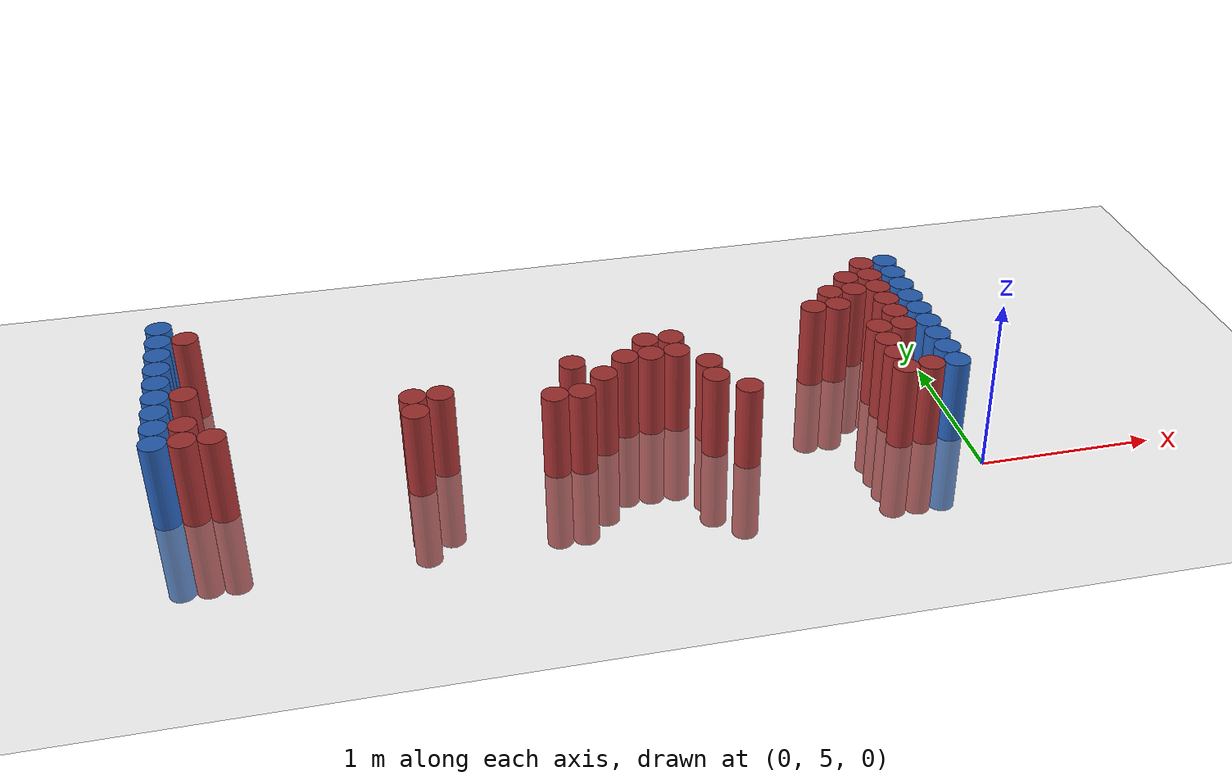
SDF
<sdf version="1.6">
 <world name="default">
  <model name="ground_plane">
   <static>1</static>
   <link name="link">
    <collision name="collision">
     <geometry><plane><normal>0 0 1</normal><size>100 100</size></plane></geometry>
     <surface><friction><ode><mu>100</mu><mu2>50</mu2></ode></friction></surface>
    </collision>
    <visual name="visual">
     <cast_shadows>0</cast_shadows>
     <geometry><plane><normal>0 0 1</normal><size>100 100</size></plane></geometry>
     <material>
      <script><uri>file://media/materials/scripts/gazebo.material</uri><name>Gazebo/Grey</name></script>
     </material>
    </visual>
   </link>
  </model>
  <model name="unit_cylinder_98">
   <static>1</static>
   <pose>-4.425000 5.475000 0.000000 0.000000 0.000000 0.000000</pose>
   <link name="link">
    <inertial>
     <mass>1</mass>
     <inertia><ixx>0.145833</ixx><ixy>0</ixy><ixz>0</ixz><iyy>0.145833</iyy><iyz>0</iyz><izz>0.125</izz></inertia>
    </inertial>
    <collision name="collision">
     <geometry><cylinder><radius>0.075000</radius><length>1</length></cylinder></geometry>
    </collision>
    <visual name="visual">
     <geometry><cylinder><radius>0.075000</radius><length>1</length></cylinder></geometry>
     <material>
      <ambient>0.152000 0.379000 0.720000 1</ambient>
      <diffuse>0.152000 0.379000 0.720000 1</diffuse>
     </material>
     <material>
      <script><name>Gazebo/Grey</name><uri>file://media/materials/scripts/gazebo.material</uri></script>
     </material>
    </visual>
   </link>
  </model>
  <model name="unit_cylinder_99">
   <static>1</static>
   <pose>-4.425000 5.625000 0.000000 0.000000 0.000000 0.000000</pose>
   <link name="link">
    <inertial>
     <mass>1</mass>
     <inertia><ixx>0.145833</ixx><ixy>0</ixy><ixz>0</ixz><iyy>0.145833</iyy><iyz>0</iyz><izz>0.125</izz></inertia>
    </inertial>
    <collision name="collision">
     <geometry><cylinder><radius>0.075000</radius><length>1</length></cylinder></geometry>
    </collision>
    <visual name="visual">
     <geometry><cylinder><radius>0.075000</radius><length>1</length></cylinder></geometry>
     <material>
      <ambient>0.152000 0.379000 0.720000 1</ambient>
      <diffuse>0.152000 0.379000 0.720000 1</diffuse>
     </material>
     <material>
      <script><name>Gazebo/Grey</name><uri>file://media/materials/scripts/gazebo.material</uri></script>
     </material>
    </visual>
   </link>
  </model>
  <model name="unit_cylinder_100">
   <static>1</static>
   <pose>-4.425000 5.775000 0.000000 0.000000 0.000000 0.000000</pose>
   <link name="link">
    <inertial>
     <mass>1</mass>
     <inertia><ixx>0.145833</ixx><ixy>0</ixy><ixz>0</ixz><iyy>0.145833</iyy><iyz>0</iyz><izz>0.125</izz></inertia>
    </inertial>
    <collision name="collision">
     <geometry><cylinder><radius>0.075000</radius><length>1</length></cylinder></geometry>
    </collision>
    <visual name="visual">
     <geometry><cylinder><radius>0.075000</radius><length>1</length></cylinder></geometry>
     <material>
      <ambient>0.152000 0.379000 0.720000 1</ambient>
      <diffuse>0.152000 0.379000 0.720000 1</diffuse>
     </material>
     <material>
      <script><name>Gazebo/Grey</name><uri>file://media/materials/scripts/gazebo.material</uri></script>
     </material>
    </visual>
   </link>
  </model>
  <model name="unit_cylinder_101">
   <static>1</static>
   <pose>-4.425000 5.925000 0.000000 0.000000 0.000000 0.000000</pose>
   <link name="link">
    <inertial>
     <mass>1</mass>
     <inertia><ixx>0.145833</ixx><ixy>0</ixy><ixz>0</ixz><iyy>0.145833</iyy><iyz>0</iyz><izz>0.125</izz></inertia>
    </inertial>
    <collision name="collision">
     <geometry><cylinder><radius>0.075000</radius><length>1</length></cylinder></geometry>
    </collision>
    <visual name="visual">
     <geometry><cylinder><radius>0.075000</radius><length>1</length></cylinder></geometry>
     <material>
      <ambient>0.152000 0.379000 0.720000 1</ambient>
      <diffuse>0.152000 0.379000 0.720000 1</diffuse>
     </material>
     <material>
      <script><name>Gazebo/Grey</name><uri>file://media/materials/scripts/gazebo.material</uri></script>
     </material>
    </visual>
   </link>
  </model>
  <model name="unit_cylinder_102">
   <static>1</static>
   <pose>-4.425000 6.075000 0.000000 0.000000 0.000000 0.000000</pose>
   <link name="link">
    <inertial>
     <mass>1</mass>
     <inertia><ixx>0.145833</ixx><ixy>0</ixy><ixz>0</ixz><iyy>0.145833</iyy><iyz>0</iyz><izz>0.125</izz></inertia>
    </inertial>
    <collision name="collision">
     <geometry><cylinder><radius>0.075000</radius><length>1</length></cylinder></geometry>
    </collision>
    <visual name="visual">
     <geometry><cylinder><radius>0.075000</radius><length>1</length></cylinder></geometry>
     <material>
      <ambient>0.152000 0.379000 0.720000 1</ambient>
      <diffuse>0.152000 0.379000 0.720000 1</diffuse>
     </material>
     <material>
      <script><name>Gazebo/Grey</name><uri>file://media/materials/scripts/gazebo.material</uri></script>
     </material>
    </visual>
   </link>
  </model>
  <model name="unit_cylinder_103">
   <static>1</static>
   <pose>-4.425000 6.225000 0.000000 0.000000 0.000000 0.000000</pose>
   <link name="link">
    <inertial>
     <mass>1</mass>
     <inertia><ixx>0.145833</ixx><ixy>0</ixy><ixz>0</ixz><iyy>0.145833</iyy><iyz>0</iyz><izz>0.125</izz></inertia>
    </inertial>
    <collision name="collision">
     <geometry><cylinder><radius>0.075000</radius><length>1</length></cylinder></geometry>
    </collision>
    <visual name="visual">
     <geometry><cylinder><radius>0.075000</radius><length>1</length></cylinder></geometry>
     <material>
      <ambient>0.152000 0.379000 0.720000 1</ambient>
      <diffuse>0.152000 0.379000 0.720000 1</diffuse>
     </material>
     <material>
      <script><name>Gazebo/Grey</name><uri>file://media/materials/scripts/gazebo.material</uri></script>
     </material>
    </visual>
   </link>
  </model>
  <model name="unit_cylinder_104">
   <static>1</static>
   <pose>-4.425000 6.375000 0.000000 0.000000 0.000000 0.000000</pose>
   <link name="link">
    <inertial>
     <mass>1</mass>
     <inertia><ixx>0.145833</ixx><ixy>0</ixy><ixz>0</ixz><iyy>0.145833</iyy><iyz>0</iyz><izz>0.125</izz></inertia>
    </inertial>
    <collision name="collision">
     <geometry><cylinder><radius>0.075000</radius><length>1</length></cylinder></geometry>
    </collision>
    <visual name="visual">
     <geometry><cylinder><radius>0.075000</radius><length>1</length></cylinder></geometry>
     <material>
      <ambient>0.152000 0.379000 0.720000 1</ambient>
      <diffuse>0.152000 0.379000 0.720000 1</diffuse>
     </material>
     <material>
      <script><name>Gazebo/Grey</name><uri>file://media/materials/scripts/gazebo.material</uri></script>
     </material>
    </visual>
   </link>
  </model>
  <model name="unit_cylinder_105">
   <static>1</static>
   <pose>-4.425000 6.525000 0.000000 0.000000 0.000000 0.000000</pose>
   <link name="link">
    <inertial>
     <mass>1</mass>
     <inertia><ixx>0.145833</ixx><ixy>0</ixy><ixz>0</ixz><iyy>0.145833</iyy><iyz>0</iyz><izz>0.125</izz></inertia>
    </inertial>
    <collision name="collision">
     <geometry><cylinder><radius>0.075000</radius><length>1</length></cylinder></geometry>
    </collision>
    <visual name="visual">
     <geometry><cylinder><radius>0.075000</radius><length>1</length></cylinder></geometry>
     <material>
      <ambient>0.152000 0.379000 0.720000 1</ambient>
      <diffuse>0.152000 0.379000 0.720000 1</diffuse>
     </material>
     <material>
      <script><name>Gazebo/Grey</name><uri>file://media/materials/scripts/gazebo.material</uri></script>
     </material>
    </visual>
   </link>
  </model>
  <model name="unit_cylinder_106">
   <static>1</static>
   <pose>-4.425000 6.675000 0.000000 0.000000 0.000000 0.000000</pose>
   <link name="link">
    <inertial>
     <mass>1</mass>
     <inertia><ixx>0.145833</ixx><ixy>0</ixy><ixz>0</ixz><iyy>0.145833</iyy><iyz>0</iyz><izz>0.125</izz></inertia>
    </inertial>
    <collision name="collision">
     <geometry><cylinder><radius>0.075000</radius><length>1</length></cylinder></geometry>
    </collision>
    <visual name="visual">
     <geometry><cylinder><radius>0.075000</radius><length>1</length></cylinder></geometry>
     <material>
      <ambient>0.152000 0.379000 0.720000 1</ambient>
      <diffuse>0.152000 0.379000 0.720000 1</diffuse>
     </material>
     <material>
      <script><name>Gazebo/Grey</name><uri>file://media/materials/scripts/gazebo.material</uri></script>
     </material>
    </visual>
   </link>
  </model>
  <model name="unit_cylinder_128">
   <static>1</static>
   <pose>-4.275000 5.475000 0.000000 0.000000 0.000000 0.000000</pose>
   <link name="link">
    <inertial>
     <mass>1</mass>
     <inertia><ixx>0.145833</ixx><ixy>0</ixy><ixz>0</ixz><iyy>0.145833</iyy><iyz>0</iyz><izz>0.125</izz></inertia>
    </inertial>
    <collision name="collision">
     <geometry><cylinder><radius>0.075000</radius><length>1</length></cylinder></geometry>
    </collision>
    <visual name="visual">
     <geometry><cylinder><radius>0.075000</radius><length>1</length></cylinder></geometry>
     <material>
      <ambient>0.648000 0.192000 0.192000 1</ambient>
      <diffuse>0.648000 0.192000 0.192000 1</diffuse>
     </material>
     <material>
      <script><name>Gazebo/Grey</name><uri>file://media/materials/scripts/gazebo.material</uri></script>
     </material>
    </visual>
   </link>
  </model>
  <model name="unit_cylinder_129">
   <static>1</static>
   <pose>-4.275000 5.625000 0.000000 0.000000 0.000000 0.000000</pose>
   <link name="link">
    <inertial>
     <mass>1</mass>
     <inertia><ixx>0.145833</ixx><ixy>0</ixy><ixz>0</ixz><iyy>0.145833</iyy><iyz>0</iyz><izz>0.125</izz></inertia>
    </inertial>
    <collision name="collision">
     <geometry><cylinder><radius>0.075000</radius><length>1</length></cylinder></geometry>
    </collision>
    <visual name="visual">
     <geometry><cylinder><radius>0.075000</radius><length>1</length></cylinder></geometry>
     <material>
      <ambient>0.648000 0.192000 0.192000 1</ambient>
      <diffuse>0.648000 0.192000 0.192000 1</diffuse>
     </material>
     <material>
      <script><name>Gazebo/Grey</name><uri>file://media/materials/scripts/gazebo.material</uri></script>
     </material>
    </visual>
   </link>
  </model>
  <model name="unit_cylinder_130">
   <static>1</static>
   <pose>-4.275000 5.925000 0.000000 0.000000 0.000000 0.000000</pose>
   <link name="link">
    <inertial>
     <mass>1</mass>
     <inertia><ixx>0.145833</ixx><ixy>0</ixy><ixz>0</ixz><iyy>0.145833</iyy><iyz>0</iyz><izz>0.125</izz></inertia>
    </inertial>
    <collision name="collision">
     <geometry><cylinder><radius>0.075000</radius><length>1</length></cylinder></geometry>
    </collision>
    <visual name="visual">
     <geometry><cylinder><radius>0.075000</radius><length>1</length></cylinder></geometry>
     <material>
      <ambient>0.648000 0.192000 0.192000 1</ambient>
      <diffuse>0.648000 0.192000 0.192000 1</diffuse>
     </material>
     <material>
      <script><name>Gazebo/Grey</name><uri>file://media/materials/scripts/gazebo.material</uri></script>
     </material>
    </visual>
   </link>
  </model>
  <model name="unit_cylinder_131">
   <static>1</static>
   <pose>-4.275000 6.525000 0.000000 0.000000 0.000000 0.000000</pose>
   <link name="link">
    <inertial>
     <mass>1</mass>
     <inertia><ixx>0.145833</ixx><ixy>0</ixy><ixz>0</ixz><iyy>0.145833</iyy><iyz>0</iyz><izz>0.125</izz></inertia>
    </inertial>
    <collision name="collision">
     <geometry><cylinder><radius>0.075000</radius><length>1</length></cylinder></geometry>
    </collision>
    <visual name="visual">
     <geometry><cylinder><radius>0.075000</radius><length>1</length></cylinder></geometry>
     <material>
      <ambient>0.648000 0.192000 0.192000 1</ambient>
      <diffuse>0.648000 0.192000 0.192000 1</diffuse>
     </material>
     <material>
      <script><name>Gazebo/Grey</name><uri>file://media/materials/scripts/gazebo.material</uri></script>
     </material>
    </visual>
   </link>
  </model>
  <model name="unit_cylinder_143">
   <static>1</static>
   <pose>-4.125000 5.475000 0.000000 0.000000 0.000000 0.000000</pose>
   <link name="link">
    <inertial>
     <mass>1</mass>
     <inertia><ixx>0.145833</ixx><ixy>0</ixy><ixz>0</ixz><iyy>0.145833</iyy><iyz>0</iyz><izz>0.125</izz></inertia>
    </inertial>
    <collision name="collision">
     <geometry><cylinder><radius>0.075000</radius><length>1</length></cylinder></geometry>
    </collision>
    <visual name="visual">
     <geometry><cylinder><radius>0.075000</radius><length>1</length></cylinder></geometry>
     <material>
      <ambient>0.648000 0.192000 0.192000 1</ambient>
      <diffuse>0.648000 0.192000 0.192000 1</diffuse>
     </material>
     <material>
      <script><name>Gazebo/Grey</name><uri>file://media/materials/scripts/gazebo.material</uri></script>
     </material>
    </visual>
   </link>
  </model>
  <model name="unit_cylinder_185">
   <static>1</static>
   <pose>-3.075000 5.475000 0.000000 0.000000 0.000000 0.000000</pose>
   <link name="link">
    <inertial>
     <mass>1</mass>
     <inertia><ixx>0.145833</ixx><ixy>0</ixy><ixz>0</ixz><iyy>0.145833</iyy><iyz>0</iyz><izz>0.125</izz></inertia>
    </inertial>
    <collision name="collision">
     <geometry><cylinder><radius>0.075000</radius><length>1</length></cylinder></geometry>
    </collision>
    <visual name="visual">
     <geometry><cylinder><radius>0.075000</radius><length>1</length></cylinder></geometry>
     <material>
      <ambient>0.648000 0.192000 0.192000 1</ambient>
      <diffuse>0.648000 0.192000 0.192000 1</diffuse>
     </material>
     <material>
      <script><name>Gazebo/Grey</name><uri>file://media/materials/scripts/gazebo.material</uri></script>
     </material>
    </visual>
   </link>
  </model>
  <model name="unit_cylinder_186">
   <static>1</static>
   <pose>-3.075000 5.625000 0.000000 0.000000 0.000000 0.000000</pose>
   <link name="link">
    <inertial>
     <mass>1</mass>
     <inertia><ixx>0.145833</ixx><ixy>0</ixy><ixz>0</ixz><iyy>0.145833</iyy><iyz>0</iyz><izz>0.125</izz></inertia>
    </inertial>
    <collision name="collision">
     <geometry><cylinder><radius>0.075000</radius><length>1</length></cylinder></geometry>
    </collision>
    <visual name="visual">
     <geometry><cylinder><radius>0.075000</radius><length>1</length></cylinder></geometry>
     <material>
      <ambient>0.648000 0.192000 0.192000 1</ambient>
      <diffuse>0.648000 0.192000 0.192000 1</diffuse>
     </material>
     <material>
      <script><name>Gazebo/Grey</name><uri>file://media/materials/scripts/gazebo.material</uri></script>
     </material>
    </visual>
   </link>
  </model>
  <model name="unit_cylinder_187">
   <static>1</static>
   <pose>-2.925000 5.625000 0.000000 0.000000 0.000000 0.000000</pose>
   <link name="link">
    <inertial>
     <mass>1</mass>
     <inertia><ixx>0.145833</ixx><ixy>0</ixy><ixz>0</ixz><iyy>0.145833</iyy><iyz>0</iyz><izz>0.125</izz></inertia>
    </inertial>
    <collision name="collision">
     <geometry><cylinder><radius>0.075000</radius><length>1</length></cylinder></geometry>
    </collision>
    <visual name="visual">
     <geometry><cylinder><radius>0.075000</radius><length>1</length></cylinder></geometry>
     <material>
      <ambient>0.648000 0.192000 0.192000 1</ambient>
      <diffuse>0.648000 0.192000 0.192000 1</diffuse>
     </material>
     <material>
      <script><name>Gazebo/Grey</name><uri>file://media/materials/scripts/gazebo.material</uri></script>
     </material>
    </visual>
   </link>
  </model>
  <model name="unit_cylinder_191">
   <static>1</static>
   <pose>-2.325000 5.475000 0.000000 0.000000 0.000000 0.000000</pose>
   <link name="link">
    <inertial>
     <mass>1</mass>
     <inertia><ixx>0.145833</ixx><ixy>0</ixy><ixz>0</ixz><iyy>0.145833</iyy><iyz>0</iyz><izz>0.125</izz></inertia>
    </inertial>
    <collision name="collision">
     <geometry><cylinder><radius>0.075000</radius><length>1</length></cylinder></geometry>
    </collision>
    <visual name="visual">
     <geometry><cylinder><radius>0.075000</radius><length>1</length></cylinder></geometry>
     <material>
      <ambient>0.648000 0.192000 0.192000 1</ambient>
      <diffuse>0.648000 0.192000 0.192000 1</diffuse>
     </material>
     <material>
      <script><name>Gazebo/Grey</name><uri>file://media/materials/scripts/gazebo.material</uri></script>
     </material>
    </visual>
   </link>
  </model>
  <model name="unit_cylinder_196">
   <static>1</static>
   <pose>-2.175000 5.475000 0.000000 0.000000 0.000000 0.000000</pose>
   <link name="link">
    <inertial>
     <mass>1</mass>
     <inertia><ixx>0.145833</ixx><ixy>0</ixy><ixz>0</ixz><iyy>0.145833</iyy><iyz>0</iyz><izz>0.125</izz></inertia>
    </inertial>
    <collision name="collision">
     <geometry><cylinder><radius>0.075000</radius><length>1</length></cylinder></geometry>
    </collision>
    <visual name="visual">
     <geometry><cylinder><radius>0.075000</radius><length>1</length></cylinder></geometry>
     <material>
      <ambient>0.648000 0.192000 0.192000 1</ambient>
      <diffuse>0.648000 0.192000 0.192000 1</diffuse>
     </material>
     <material>
      <script><name>Gazebo/Grey</name><uri>file://media/materials/scripts/gazebo.material</uri></script>
     </material>
    </visual>
   </link>
  </model>
  <model name="unit_cylinder_197">
   <static>1</static>
   <pose>-2.175000 5.775000 0.000000 0.000000 0.000000 0.000000</pose>
   <link name="link">
    <inertial>
     <mass>1</mass>
     <inertia><ixx>0.145833</ixx><ixy>0</ixy><ixz>0</ixz><iyy>0.145833</iyy><iyz>0</iyz><izz>0.125</izz></inertia>
    </inertial>
    <collision name="collision">
     <geometry><cylinder><radius>0.075000</radius><length>1</length></cylinder></geometry>
    </collision>
    <visual name="visual">
     <geometry><cylinder><radius>0.075000</radius><length>1</length></cylinder></geometry>
     <material>
      <ambient>0.648000 0.192000 0.192000 1</ambient>
      <diffuse>0.648000 0.192000 0.192000 1</diffuse>
     </material>
     <material>
      <script><name>Gazebo/Grey</name><uri>file://media/materials/scripts/gazebo.material</uri></script>
     </material>
    </visual>
   </link>
  </model>
  <model name="unit_cylinder_202">
   <static>1</static>
   <pose>-2.025000 5.625000 0.000000 0.000000 0.000000 0.000000</pose>
   <link name="link">
    <inertial>
     <mass>1</mass>
     <inertia><ixx>0.145833</ixx><ixy>0</ixy><ixz>0</ixz><iyy>0.145833</iyy><iyz>0</iyz><izz>0.125</izz></inertia>
    </inertial>
    <collision name="collision">
     <geometry><cylinder><radius>0.075000</radius><length>1</length></cylinder></geometry>
    </collision>
    <visual name="visual">
     <geometry><cylinder><radius>0.075000</radius><length>1</length></cylinder></geometry>
     <material>
      <ambient>0.648000 0.192000 0.192000 1</ambient>
      <diffuse>0.648000 0.192000 0.192000 1</diffuse>
     </material>
     <material>
      <script><name>Gazebo/Grey</name><uri>file://media/materials/scripts/gazebo.material</uri></script>
     </material>
    </visual>
   </link>
  </model>
  <model name="unit_cylinder_208">
   <static>1</static>
   <pose>-1.875000 5.775000 0.000000 0.000000 0.000000 0.000000</pose>
   <link name="link">
    <inertial>
     <mass>1</mass>
     <inertia><ixx>0.145833</ixx><ixy>0</ixy><ixz>0</ixz><iyy>0.145833</iyy><iyz>0</iyz><izz>0.125</izz></inertia>
    </inertial>
    <collision name="collision">
     <geometry><cylinder><radius>0.075000</radius><length>1</length></cylinder></geometry>
    </collision>
    <visual name="visual">
     <geometry><cylinder><radius>0.075000</radius><length>1</length></cylinder></geometry>
     <material>
      <ambient>0.648000 0.192000 0.192000 1</ambient>
      <diffuse>0.648000 0.192000 0.192000 1</diffuse>
     </material>
     <material>
      <script><name>Gazebo/Grey</name><uri>file://media/materials/scripts/gazebo.material</uri></script>
     </material>
    </visual>
   </link>
  </model>
  <model name="unit_cylinder_213">
   <static>1</static>
   <pose>-1.725000 5.775000 0.000000 0.000000 0.000000 0.000000</pose>
   <link name="link">
    <inertial>
     <mass>1</mass>
     <inertia><ixx>0.145833</ixx><ixy>0</ixy><ixz>0</ixz><iyy>0.145833</iyy><iyz>0</iyz><izz>0.125</izz></inertia>
    </inertial>
    <collision name="collision">
     <geometry><cylinder><radius>0.075000</radius><length>1</length></cylinder></geometry>
    </collision>
    <visual name="visual">
     <geometry><cylinder><radius>0.075000</radius><length>1</length></cylinder></geometry>
     <material>
      <ambient>0.648000 0.192000 0.192000 1</ambient>
      <diffuse>0.648000 0.192000 0.192000 1</diffuse>
     </material>
     <material>
      <script><name>Gazebo/Grey</name><uri>file://media/materials/scripts/gazebo.material</uri></script>
     </material>
    </visual>
   </link>
  </model>
  <model name="unit_cylinder_214">
   <static>1</static>
   <pose>-1.725000 5.925000 0.000000 0.000000 0.000000 0.000000</pose>
   <link name="link">
    <inertial>
     <mass>1</mass>
     <inertia><ixx>0.145833</ixx><ixy>0</ixy><ixz>0</ixz><iyy>0.145833</iyy><iyz>0</iyz><izz>0.125</izz></inertia>
    </inertial>
    <collision name="collision">
     <geometry><cylinder><radius>0.075000</radius><length>1</length></cylinder></geometry>
    </collision>
    <visual name="visual">
     <geometry><cylinder><radius>0.075000</radius><length>1</length></cylinder></geometry>
     <material>
      <ambient>0.648000 0.192000 0.192000 1</ambient>
      <diffuse>0.648000 0.192000 0.192000 1</diffuse>
     </material>
     <material>
      <script><name>Gazebo/Grey</name><uri>file://media/materials/scripts/gazebo.material</uri></script>
     </material>
    </visual>
   </link>
  </model>
  <model name="unit_cylinder_219">
   <static>1</static>
   <pose>-1.575000 5.775000 0.000000 0.000000 0.000000 0.000000</pose>
   <link name="link">
    <inertial>
     <mass>1</mass>
     <inertia><ixx>0.145833</ixx><ixy>0</ixy><ixz>0</ixz><iyy>0.145833</iyy><iyz>0</iyz><izz>0.125</izz></inertia>
    </inertial>
    <collision name="collision">
     <geometry><cylinder><radius>0.075000</radius><length>1</length></cylinder></geometry>
    </collision>
    <visual name="visual">
     <geometry><cylinder><radius>0.075000</radius><length>1</length></cylinder></geometry>
     <material>
      <ambient>0.648000 0.192000 0.192000 1</ambient>
      <diffuse>0.648000 0.192000 0.192000 1</diffuse>
     </material>
     <material>
      <script><name>Gazebo/Grey</name><uri>file://media/materials/scripts/gazebo.material</uri></script>
     </material>
    </visual>
   </link>
  </model>
  <model name="unit_cylinder_220">
   <static>1</static>
   <pose>-1.575000 5.925000 0.000000 0.000000 0.000000 0.000000</pose>
   <link name="link">
    <inertial>
     <mass>1</mass>
     <inertia><ixx>0.145833</ixx><ixy>0</ixy><ixz>0</ixz><iyy>0.145833</iyy><iyz>0</iyz><izz>0.125</izz></inertia>
    </inertial>
    <collision name="collision">
     <geometry><cylinder><radius>0.075000</radius><length>1</length></cylinder></geometry>
    </collision>
    <visual name="visual">
     <geometry><cylinder><radius>0.075000</radius><length>1</length></cylinder></geometry>
     <material>
      <ambient>0.648000 0.192000 0.192000 1</ambient>
      <diffuse>0.648000 0.192000 0.192000 1</diffuse>
     </material>
     <material>
      <script><name>Gazebo/Grey</name><uri>file://media/materials/scripts/gazebo.material</uri></script>
     </material>
    </visual>
   </link>
  </model>
  <model name="unit_cylinder_226">
   <static>1</static>
   <pose>-1.425000 5.475000 0.000000 0.000000 0.000000 0.000000</pose>
   <link name="link">
    <inertial>
     <mass>1</mass>
     <inertia><ixx>0.145833</ixx><ixy>0</ixy><ixz>0</ixz><iyy>0.145833</iyy><iyz>0</iyz><izz>0.125</izz></inertia>
    </inertial>
    <collision name="collision">
     <geometry><cylinder><radius>0.075000</radius><length>1</length></cylinder></geometry>
    </collision>
    <visual name="visual">
     <geometry><cylinder><radius>0.075000</radius><length>1</length></cylinder></geometry>
     <material>
      <ambient>0.648000 0.192000 0.192000 1</ambient>
      <diffuse>0.648000 0.192000 0.192000 1</diffuse>
     </material>
     <material>
      <script><name>Gazebo/Grey</name><uri>file://media/materials/scripts/gazebo.material</uri></script>
     </material>
    </visual>
   </link>
  </model>
  <model name="unit_cylinder_227">
   <static>1</static>
   <pose>-1.425000 5.625000 0.000000 0.000000 0.000000 0.000000</pose>
   <link name="link">
    <inertial>
     <mass>1</mass>
     <inertia><ixx>0.145833</ixx><ixy>0</ixy><ixz>0</ixz><iyy>0.145833</iyy><iyz>0</iyz><izz>0.125</izz></inertia>
    </inertial>
    <collision name="collision">
     <geometry><cylinder><radius>0.075000</radius><length>1</length></cylinder></geometry>
    </collision>
    <visual name="visual">
     <geometry><cylinder><radius>0.075000</radius><length>1</length></cylinder></geometry>
     <material>
      <ambient>0.648000 0.192000 0.192000 1</ambient>
      <diffuse>0.648000 0.192000 0.192000 1</diffuse>
     </material>
     <material>
      <script><name>Gazebo/Grey</name><uri>file://media/materials/scripts/gazebo.material</uri></script>
     </material>
    </visual>
   </link>
  </model>
  <model name="unit_cylinder_231">
   <static>1</static>
   <pose>-1.275000 5.325000 0.000000 0.000000 0.000000 0.000000</pose>
   <link name="link">
    <inertial>
     <mass>1</mass>
     <inertia><ixx>0.145833</ixx><ixy>0</ixy><ixz>0</ixz><iyy>0.145833</iyy><iyz>0</iyz><izz>0.125</izz></inertia>
    </inertial>
    <collision name="collision">
     <geometry><cylinder><radius>0.075000</radius><length>1</length></cylinder></geometry>
    </collision>
    <visual name="visual">
     <geometry><cylinder><radius>0.075000</radius><length>1</length></cylinder></geometry>
     <material>
      <ambient>0.648000 0.192000 0.192000 1</ambient>
      <diffuse>0.648000 0.192000 0.192000 1</diffuse>
     </material>
     <material>
      <script><name>Gazebo/Grey</name><uri>file://media/materials/scripts/gazebo.material</uri></script>
     </material>
    </visual>
   </link>
  </model>
  <model name="unit_cylinder_251">
   <static>1</static>
   <pose>-0.675000 6.075000 0.000000 0.000000 0.000000 0.000000</pose>
   <link name="link">
    <inertial>
     <mass>1</mass>
     <inertia><ixx>0.145833</ixx><ixy>0</ixy><ixz>0</ixz><iyy>0.145833</iyy><iyz>0</iyz><izz>0.125</izz></inertia>
    </inertial>
    <collision name="collision">
     <geometry><cylinder><radius>0.075000</radius><length>1</length></cylinder></geometry>
    </collision>
    <visual name="visual">
     <geometry><cylinder><radius>0.075000</radius><length>1</length></cylinder></geometry>
     <material>
      <ambient>0.648000 0.192000 0.192000 1</ambient>
      <diffuse>0.648000 0.192000 0.192000 1</diffuse>
     </material>
     <material>
      <script><name>Gazebo/Grey</name><uri>file://media/materials/scripts/gazebo.material</uri></script>
     </material>
    </visual>
   </link>
  </model>
  <model name="unit_cylinder_260">
   <static>1</static>
   <pose>-0.525000 6.075000 0.000000 0.000000 0.000000 0.000000</pose>
   <link name="link">
    <inertial>
     <mass>1</mass>
     <inertia><ixx>0.145833</ixx><ixy>0</ixy><ixz>0</ixz><iyy>0.145833</iyy><iyz>0</iyz><izz>0.125</izz></inertia>
    </inertial>
    <collision name="collision">
     <geometry><cylinder><radius>0.075000</radius><length>1</length></cylinder></geometry>
    </collision>
    <visual name="visual">
     <geometry><cylinder><radius>0.075000</radius><length>1</length></cylinder></geometry>
     <material>
      <ambient>0.648000 0.192000 0.192000 1</ambient>
      <diffuse>0.648000 0.192000 0.192000 1</diffuse>
     </material>
     <material>
      <script><name>Gazebo/Grey</name><uri>file://media/materials/scripts/gazebo.material</uri></script>
     </material>
    </visual>
   </link>
  </model>
  <model name="unit_cylinder_261">
   <static>1</static>
   <pose>-0.525000 6.225000 0.000000 0.000000 0.000000 0.000000</pose>
   <link name="link">
    <inertial>
     <mass>1</mass>
     <inertia><ixx>0.145833</ixx><ixy>0</ixy><ixz>0</ixz><iyy>0.145833</iyy><iyz>0</iyz><izz>0.125</izz></inertia>
    </inertial>
    <collision name="collision">
     <geometry><cylinder><radius>0.075000</radius><length>1</length></cylinder></geometry>
    </collision>
    <visual name="visual">
     <geometry><cylinder><radius>0.075000</radius><length>1</length></cylinder></geometry>
     <material>
      <ambient>0.648000 0.192000 0.192000 1</ambient>
      <diffuse>0.648000 0.192000 0.192000 1</diffuse>
     </material>
     <material>
      <script><name>Gazebo/Grey</name><uri>file://media/materials/scripts/gazebo.material</uri></script>
     </material>
    </visual>
   </link>
  </model>
  <model name="unit_cylinder_266">
   <static>1</static>
   <pose>-0.375000 5.325000 0.000000 0.000000 0.000000 0.000000</pose>
   <link name="link">
    <inertial>
     <mass>1</mass>
     <inertia><ixx>0.145833</ixx><ixy>0</ixy><ixz>0</ixz><iyy>0.145833</iyy><iyz>0</iyz><izz>0.125</izz></inertia>
    </inertial>
    <collision name="collision">
     <geometry><cylinder><radius>0.075000</radius><length>1</length></cylinder></geometry>
    </collision>
    <visual name="visual">
     <geometry><cylinder><radius>0.075000</radius><length>1</length></cylinder></geometry>
     <material>
      <ambient>0.648000 0.192000 0.192000 1</ambient>
      <diffuse>0.648000 0.192000 0.192000 1</diffuse>
     </material>
     <material>
      <script><name>Gazebo/Grey</name><uri>file://media/materials/scripts/gazebo.material</uri></script>
     </material>
    </visual>
   </link>
  </model>
  <model name="unit_cylinder_267">
   <static>1</static>
   <pose>-0.375000 5.475000 0.000000 0.000000 0.000000 0.000000</pose>
   <link name="link">
    <inertial>
     <mass>1</mass>
     <inertia><ixx>0.145833</ixx><ixy>0</ixy><ixz>0</ixz><iyy>0.145833</iyy><iyz>0</iyz><izz>0.125</izz></inertia>
    </inertial>
    <collision name="collision">
     <geometry><cylinder><radius>0.075000</radius><length>1</length></cylinder></geometry>
    </collision>
    <visual name="visual">
     <geometry><cylinder><radius>0.075000</radius><length>1</length></cylinder></geometry>
     <material>
      <ambient>0.648000 0.192000 0.192000 1</ambient>
      <diffuse>0.648000 0.192000 0.192000 1</diffuse>
     </material>
     <material>
      <script><name>Gazebo/Grey</name><uri>file://media/materials/scripts/gazebo.material</uri></script>
     </material>
    </visual>
   </link>
  </model>
  <model name="unit_cylinder_268">
   <static>1</static>
   <pose>-0.375000 5.625000 0.000000 0.000000 0.000000 0.000000</pose>
   <link name="link">
    <inertial>
     <mass>1</mass>
     <inertia><ixx>0.145833</ixx><ixy>0</ixy><ixz>0</ixz><iyy>0.145833</iyy><iyz>0</iyz><izz>0.125</izz></inertia>
    </inertial>
    <collision name="collision">
     <geometry><cylinder><radius>0.075000</radius><length>1</length></cylinder></geometry>
    </collision>
    <visual name="visual">
     <geometry><cylinder><radius>0.075000</radius><length>1</length></cylinder></geometry>
     <material>
      <ambient>0.648000 0.192000 0.192000 1</ambient>
      <diffuse>0.648000 0.192000 0.192000 1</diffuse>
     </material>
     <material>
      <script><name>Gazebo/Grey</name><uri>file://media/materials/scripts/gazebo.material</uri></script>
     </material>
    </visual>
   </link>
  </model>
  <model name="unit_cylinder_269">
   <static>1</static>
   <pose>-0.375000 5.775000 0.000000 0.000000 0.000000 0.000000</pose>
   <link name="link">
    <inertial>
     <mass>1</mass>
     <inertia><ixx>0.145833</ixx><ixy>0</ixy><ixz>0</ixz><iyy>0.145833</iyy><iyz>0</iyz><izz>0.125</izz></inertia>
    </inertial>
    <collision name="collision">
     <geometry><cylinder><radius>0.075000</radius><length>1</length></cylinder></geometry>
    </collision>
    <visual name="visual">
     <geometry><cylinder><radius>0.075000</radius><length>1</length></cylinder></geometry>
     <material>
      <ambient>0.648000 0.192000 0.192000 1</ambient>
      <diffuse>0.648000 0.192000 0.192000 1</diffuse>
     </material>
     <material>
      <script><name>Gazebo/Grey</name><uri>file://media/materials/scripts/gazebo.material</uri></script>
     </material>
    </visual>
   </link>
  </model>
  <model name="unit_cylinder_270">
   <static>1</static>
   <pose>-0.375000 6.225000 0.000000 0.000000 0.000000 0.000000</pose>
   <link name="link">
    <inertial>
     <mass>1</mass>
     <inertia><ixx>0.145833</ixx><ixy>0</ixy><ixz>0</ixz><iyy>0.145833</iyy><iyz>0</iyz><izz>0.125</izz></inertia>
    </inertial>
    <collision name="collision">
     <geometry><cylinder><radius>0.075000</radius><length>1</length></cylinder></geometry>
    </collision>
    <visual name="visual">
     <geometry><cylinder><radius>0.075000</radius><length>1</length></cylinder></geometry>
     <material>
      <ambient>0.648000 0.192000 0.192000 1</ambient>
      <diffuse>0.648000 0.192000 0.192000 1</diffuse>
     </material>
     <material>
      <script><name>Gazebo/Grey</name><uri>file://media/materials/scripts/gazebo.material</uri></script>
     </material>
    </visual>
   </link>
  </model>
  <model name="unit_cylinder_271">
   <static>1</static>
   <pose>-0.375000 6.375000 0.000000 0.000000 0.000000 0.000000</pose>
   <link name="link">
    <inertial>
     <mass>1</mass>
     <inertia><ixx>0.145833</ixx><ixy>0</ixy><ixz>0</ixz><iyy>0.145833</iyy><iyz>0</iyz><izz>0.125</izz></inertia>
    </inertial>
    <collision name="collision">
     <geometry><cylinder><radius>0.075000</radius><length>1</length></cylinder></geometry>
    </collision>
    <visual name="visual">
     <geometry><cylinder><radius>0.075000</radius><length>1</length></cylinder></geometry>
     <material>
      <ambient>0.648000 0.192000 0.192000 1</ambient>
      <diffuse>0.648000 0.192000 0.192000 1</diffuse>
     </material>
     <material>
      <script><name>Gazebo/Grey</name><uri>file://media/materials/scripts/gazebo.material</uri></script>
     </material>
    </visual>
   </link>
  </model>
  <model name="unit_cylinder_278">
   <static>1</static>
   <pose>-0.225000 5.325000 0.000000 0.000000 0.000000 0.000000</pose>
   <link name="link">
    <inertial>
     <mass>1</mass>
     <inertia><ixx>0.145833</ixx><ixy>0</ixy><ixz>0</ixz><iyy>0.145833</iyy><iyz>0</iyz><izz>0.125</izz></inertia>
    </inertial>
    <collision name="collision">
     <geometry><cylinder><radius>0.075000</radius><length>1</length></cylinder></geometry>
    </collision>
    <visual name="visual">
     <geometry><cylinder><radius>0.075000</radius><length>1</length></cylinder></geometry>
     <material>
      <ambient>0.648000 0.192000 0.192000 1</ambient>
      <diffuse>0.648000 0.192000 0.192000 1</diffuse>
     </material>
     <material>
      <script><name>Gazebo/Grey</name><uri>file://media/materials/scripts/gazebo.material</uri></script>
     </material>
    </visual>
   </link>
  </model>
  <model name="unit_cylinder_279">
   <static>1</static>
   <pose>-0.225000 5.775000 0.000000 0.000000 0.000000 0.000000</pose>
   <link name="link">
    <inertial>
     <mass>1</mass>
     <inertia><ixx>0.145833</ixx><ixy>0</ixy><ixz>0</ixz><iyy>0.145833</iyy><iyz>0</iyz><izz>0.125</izz></inertia>
    </inertial>
    <collision name="collision">
     <geometry><cylinder><radius>0.075000</radius><length>1</length></cylinder></geometry>
    </collision>
    <visual name="visual">
     <geometry><cylinder><radius>0.075000</radius><length>1</length></cylinder></geometry>
     <material>
      <ambient>0.648000 0.192000 0.192000 1</ambient>
      <diffuse>0.648000 0.192000 0.192000 1</diffuse>
     </material>
     <material>
      <script><name>Gazebo/Grey</name><uri>file://media/materials/scripts/gazebo.material</uri></script>
     </material>
    </visual>
   </link>
  </model>
  <model name="unit_cylinder_280">
   <static>1</static>
   <pose>-0.225000 5.925000 0.000000 0.000000 0.000000 0.000000</pose>
   <link name="link">
    <inertial>
     <mass>1</mass>
     <inertia><ixx>0.145833</ixx><ixy>0</ixy><ixz>0</ixz><iyy>0.145833</iyy><iyz>0</iyz><izz>0.125</izz></inertia>
    </inertial>
    <collision name="collision">
     <geometry><cylinder><radius>0.075000</radius><length>1</length></cylinder></geometry>
    </collision>
    <visual name="visual">
     <geometry><cylinder><radius>0.075000</radius><length>1</length></cylinder></geometry>
     <material>
      <ambient>0.648000 0.192000 0.192000 1</ambient>
      <diffuse>0.648000 0.192000 0.192000 1</diffuse>
     </material>
     <material>
      <script><name>Gazebo/Grey</name><uri>file://media/materials/scripts/gazebo.material</uri></script>
     </material>
    </visual>
   </link>
  </model>
  <model name="unit_cylinder_281">
   <static>1</static>
   <pose>-0.225000 6.075000 0.000000 0.000000 0.000000 0.000000</pose>
   <link name="link">
    <inertial>
     <mass>1</mass>
     <inertia><ixx>0.145833</ixx><ixy>0</ixy><ixz>0</ixz><iyy>0.145833</iyy><iyz>0</iyz><izz>0.125</izz></inertia>
    </inertial>
    <collision name="collision">
     <geometry><cylinder><radius>0.075000</radius><length>1</length></cylinder></geometry>
    </collision>
    <visual name="visual">
     <geometry><cylinder><radius>0.075000</radius><length>1</length></cylinder></geometry>
     <material>
      <ambient>0.648000 0.192000 0.192000 1</ambient>
      <diffuse>0.648000 0.192000 0.192000 1</diffuse>
     </material>
     <material>
      <script><name>Gazebo/Grey</name><uri>file://media/materials/scripts/gazebo.material</uri></script>
     </material>
    </visual>
   </link>
  </model>
  <model name="unit_cylinder_282">
   <static>1</static>
   <pose>-0.225000 6.225000 0.000000 0.000000 0.000000 0.000000</pose>
   <link name="link">
    <inertial>
     <mass>1</mass>
     <inertia><ixx>0.145833</ixx><ixy>0</ixy><ixz>0</ixz><iyy>0.145833</iyy><iyz>0</iyz><izz>0.125</izz></inertia>
    </inertial>
    <collision name="collision">
     <geometry><cylinder><radius>0.075000</radius><length>1</length></cylinder></geometry>
    </collision>
    <visual name="visual">
     <geometry><cylinder><radius>0.075000</radius><length>1</length></cylinder></geometry>
     <material>
      <ambient>0.648000 0.192000 0.192000 1</ambient>
      <diffuse>0.648000 0.192000 0.192000 1</diffuse>
     </material>
     <material>
      <script><name>Gazebo/Grey</name><uri>file://media/materials/scripts/gazebo.material</uri></script>
     </material>
    </visual>
   </link>
  </model>
  <model name="unit_cylinder_283">
   <static>1</static>
   <pose>-0.225000 6.375000 0.000000 0.000000 0.000000 0.000000</pose>
   <link name="link">
    <inertial>
     <mass>1</mass>
     <inertia><ixx>0.145833</ixx><ixy>0</ixy><ixz>0</ixz><iyy>0.145833</iyy><iyz>0</iyz><izz>0.125</izz></inertia>
    </inertial>
    <collision name="collision">
     <geometry><cylinder><radius>0.075000</radius><length>1</length></cylinder></geometry>
    </collision>
    <visual name="visual">
     <geometry><cylinder><radius>0.075000</radius><length>1</length></cylinder></geometry>
     <material>
      <ambient>0.648000 0.192000 0.192000 1</ambient>
      <diffuse>0.648000 0.192000 0.192000 1</diffuse>
     </material>
     <material>
      <script><name>Gazebo/Grey</name><uri>file://media/materials/scripts/gazebo.material</uri></script>
     </material>
    </visual>
   </link>
  </model>
  <model name="unit_cylinder_284">
   <static>1</static>
   <pose>-0.225000 6.525000 0.000000 0.000000 0.000000 0.000000</pose>
   <link name="link">
    <inertial>
     <mass>1</mass>
     <inertia><ixx>0.145833</ixx><ixy>0</ixy><ixz>0</ixz><iyy>0.145833</iyy><iyz>0</iyz><izz>0.125</izz></inertia>
    </inertial>
    <collision name="collision">
     <geometry><cylinder><radius>0.075000</radius><length>1</length></cylinder></geometry>
    </collision>
    <visual name="visual">
     <geometry><cylinder><radius>0.075000</radius><length>1</length></cylinder></geometry>
     <material>
      <ambient>0.648000 0.192000 0.192000 1</ambient>
      <diffuse>0.648000 0.192000 0.192000 1</diffuse>
     </material>
     <material>
      <script><name>Gazebo/Grey</name><uri>file://media/materials/scripts/gazebo.material</uri></script>
     </material>
    </visual>
   </link>
  </model>
  <model name="unit_cylinder_295">
   <static>1</static>
   <pose>-0.075000 5.325000 0.000000 0.000000 0.000000 0.000000</pose>
   <link name="link">
    <inertial>
     <mass>1</mass>
     <inertia><ixx>0.145833</ixx><ixy>0</ixy><ixz>0</ixz><iyy>0.145833</iyy><iyz>0</iyz><izz>0.125</izz></inertia>
    </inertial>
    <collision name="collision">
     <geometry><cylinder><radius>0.075000</radius><length>1</length></cylinder></geometry>
    </collision>
    <visual name="visual">
     <geometry><cylinder><radius>0.075000</radius><length>1</length></cylinder></geometry>
     <material>
      <ambient>0.152000 0.379000 0.720000 1</ambient>
      <diffuse>0.152000 0.379000 0.720000 1</diffuse>
     </material>
     <material>
      <script><name>Gazebo/Grey</name><uri>file://media/materials/scripts/gazebo.material</uri></script>
     </material>
    </visual>
   </link>
  </model>
  <model name="unit_cylinder_296">
   <static>1</static>
   <pose>-0.075000 5.475000 0.000000 0.000000 0.000000 0.000000</pose>
   <link name="link">
    <inertial>
     <mass>1</mass>
     <inertia><ixx>0.145833</ixx><ixy>0</ixy><ixz>0</ixz><iyy>0.145833</iyy><iyz>0</iyz><izz>0.125</izz></inertia>
    </inertial>
    <collision name="collision">
     <geometry><cylinder><radius>0.075000</radius><length>1</length></cylinder></geometry>
    </collision>
    <visual name="visual">
     <geometry><cylinder><radius>0.075000</radius><length>1</length></cylinder></geometry>
     <material>
      <ambient>0.152000 0.379000 0.720000 1</ambient>
      <diffuse>0.152000 0.379000 0.720000 1</diffuse>
     </material>
     <material>
      <script><name>Gazebo/Grey</name><uri>file://media/materials/scripts/gazebo.material</uri></script>
     </material>
    </visual>
   </link>
  </model>
  <model name="unit_cylinder_297">
   <static>1</static>
   <pose>-0.075000 5.625000 0.000000 0.000000 0.000000 0.000000</pose>
   <link name="link">
    <inertial>
     <mass>1</mass>
     <inertia><ixx>0.145833</ixx><ixy>0</ixy><ixz>0</ixz><iyy>0.145833</iyy><iyz>0</iyz><izz>0.125</izz></inertia>
    </inertial>
    <collision name="collision">
     <geometry><cylinder><radius>0.075000</radius><length>1</length></cylinder></geometry>
    </collision>
    <visual name="visual">
     <geometry><cylinder><radius>0.075000</radius><length>1</length></cylinder></geometry>
     <material>
      <ambient>0.152000 0.379000 0.720000 1</ambient>
      <diffuse>0.152000 0.379000 0.720000 1</diffuse>
     </material>
     <material>
      <script><name>Gazebo/Grey</name><uri>file://media/materials/scripts/gazebo.material</uri></script>
     </material>
    </visual>
   </link>
  </model>
  <model name="unit_cylinder_298">
   <static>1</static>
   <pose>-0.075000 5.775000 0.000000 0.000000 0.000000 0.000000</pose>
   <link name="link">
    <inertial>
     <mass>1</mass>
     <inertia><ixx>0.145833</ixx><ixy>0</ixy><ixz>0</ixz><iyy>0.145833</iyy><iyz>0</iyz><izz>0.125</izz></inertia>
    </inertial>
    <collision name="collision">
     <geometry><cylinder><radius>0.075000</radius><length>1</length></cylinder></geometry>
    </collision>
    <visual name="visual">
     <geometry><cylinder><radius>0.075000</radius><length>1</length></cylinder></geometry>
     <material>
      <ambient>0.152000 0.379000 0.720000 1</ambient>
      <diffuse>0.152000 0.379000 0.720000 1</diffuse>
     </material>
     <material>
      <script><name>Gazebo/Grey</name><uri>file://media/materials/scripts/gazebo.material</uri></script>
     </material>
    </visual>
   </link>
  </model>
  <model name="unit_cylinder_299">
   <static>1</static>
   <pose>-0.075000 5.925000 0.000000 0.000000 0.000000 0.000000</pose>
   <link name="link">
    <inertial>
     <mass>1</mass>
     <inertia><ixx>0.145833</ixx><ixy>0</ixy><ixz>0</ixz><iyy>0.145833</iyy><iyz>0</iyz><izz>0.125</izz></inertia>
    </inertial>
    <collision name="collision">
     <geometry><cylinder><radius>0.075000</radius><length>1</length></cylinder></geometry>
    </collision>
    <visual name="visual">
     <geometry><cylinder><radius>0.075000</radius><length>1</length></cylinder></geometry>
     <material>
      <ambient>0.152000 0.379000 0.720000 1</ambient>
      <diffuse>0.152000 0.379000 0.720000 1</diffuse>
     </material>
     <material>
      <script><name>Gazebo/Grey</name><uri>file://media/materials/scripts/gazebo.material</uri></script>
     </material>
    </visual>
   </link>
  </model>
  <model name="unit_cylinder_300">
   <static>1</static>
   <pose>-0.075000 6.075000 0.000000 0.000000 0.000000 0.000000</pose>
   <link name="link">
    <inertial>
     <mass>1</mass>
     <inertia><ixx>0.145833</ixx><ixy>0</ixy><ixz>0</ixz><iyy>0.145833</iyy><iyz>0</iyz><izz>0.125</izz></inertia>
    </inertial>
    <collision name="collision">
     <geometry><cylinder><radius>0.075000</radius><length>1</length></cylinder></geometry>
    </collision>
    <visual name="visual">
     <geometry><cylinder><radius>0.075000</radius><length>1</length></cylinder></geometry>
     <material>
      <ambient>0.152000 0.379000 0.720000 1</ambient>
      <diffuse>0.152000 0.379000 0.720000 1</diffuse>
     </material>
     <material>
      <script><name>Gazebo/Grey</name><uri>file://media/materials/scripts/gazebo.material</uri></script>
     </material>
    </visual>
   </link>
  </model>
  <model name="unit_cylinder_301">
   <static>1</static>
   <pose>-0.075000 6.225000 0.000000 0.000000 0.000000 0.000000</pose>
   <link name="link">
    <inertial>
     <mass>1</mass>
     <inertia><ixx>0.145833</ixx><ixy>0</ixy><ixz>0</ixz><iyy>0.145833</iyy><iyz>0</iyz><izz>0.125</izz></inertia>
    </inertial>
    <collision name="collision">
     <geometry><cylinder><radius>0.075000</radius><length>1</length></cylinder></geometry>
    </collision>
    <visual name="visual">
     <geometry><cylinder><radius>0.075000</radius><length>1</length></cylinder></geometry>
     <material>
      <ambient>0.152000 0.379000 0.720000 1</ambient>
      <diffuse>0.152000 0.379000 0.720000 1</diffuse>
     </material>
     <material>
      <script><name>Gazebo/Grey</name><uri>file://media/materials/scripts/gazebo.material</uri></script>
     </material>
    </visual>
   </link>
  </model>
  <model name="unit_cylinder_302">
   <static>1</static>
   <pose>-0.075000 6.375000 0.000000 0.000000 0.000000 0.000000</pose>
   <link name="link">
    <inertial>
     <mass>1</mass>
     <inertia><ixx>0.145833</ixx><ixy>0</ixy><ixz>0</ixz><iyy>0.145833</iyy><iyz>0</iyz><izz>0.125</izz></inertia>
    </inertial>
    <collision name="collision">
     <geometry><cylinder><radius>0.075000</radius><length>1</length></cylinder></geometry>
    </collision>
    <visual name="visual">
     <geometry><cylinder><radius>0.075000</radius><length>1</length></cylinder></geometry>
     <material>
      <ambient>0.152000 0.379000 0.720000 1</ambient>
      <diffuse>0.152000 0.379000 0.720000 1</diffuse>
     </material>
     <material>
      <script><name>Gazebo/Grey</name><uri>file://media/materials/scripts/gazebo.material</uri></script>
     </material>
    </visual>
   </link>
  </model>
  <model name="unit_cylinder_303">
   <static>1</static>
   <pose>-0.075000 6.525000 0.000000 0.000000 0.000000 0.000000</pose>
   <link name="link">
    <inertial>
     <mass>1</mass>
     <inertia><ixx>0.145833</ixx><ixy>0</ixy><ixz>0</ixz><iyy>0.145833</iyy><iyz>0</iyz><izz>0.125</izz></inertia>
    </inertial>
    <collision name="collision">
     <geometry><cylinder><radius>0.075000</radius><length>1</length></cylinder></geometry>
    </collision>
    <visual name="visual">
     <geometry><cylinder><radius>0.075000</radius><length>1</length></cylinder></geometry>
     <material>
      <ambient>0.152000 0.379000 0.720000 1</ambient>
      <diffuse>0.152000 0.379000 0.720000 1</diffuse>
     </material>
     <material>
      <script><name>Gazebo/Grey</name><uri>file://media/materials/scripts/gazebo.material</uri></script>
     </material>
    </visual>
   </link>
  </model>
 </world>
</sdf>
